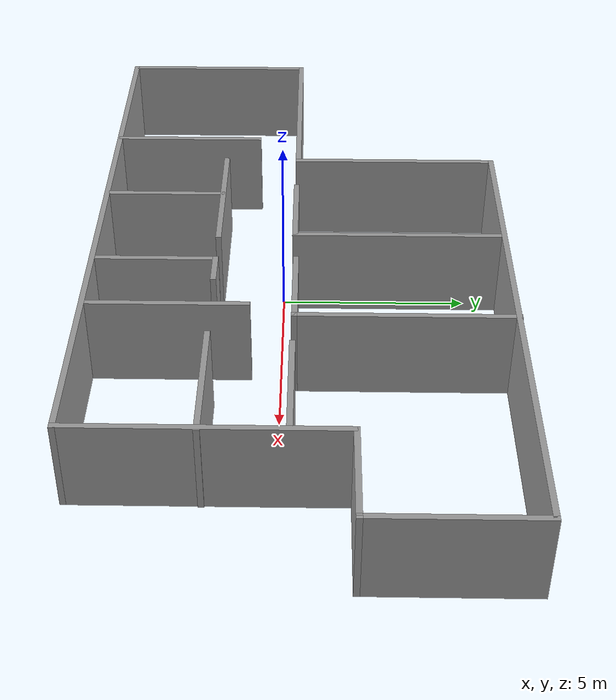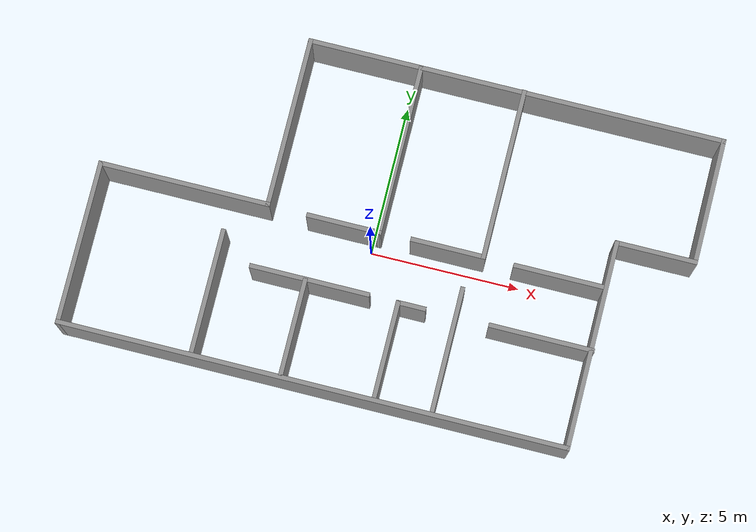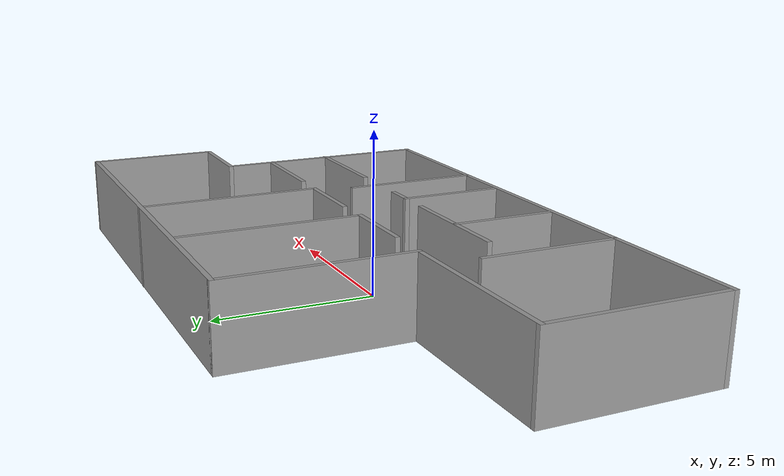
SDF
<?xml version='1.0'?>
<sdf version='1.6'>
  <model name='condo_floor'>
    <pose frame=''>0.600098 0.477909 0 0 -0 0</pose>
    <link name='Wall_40'>
      <collision name='Wall_40_Collision'>
        <geometry>
          <box>
            <size>17 0.15 2.5</size>
          </box>
        </geometry>
        <pose frame=''>0 0 1.25 0 -0 0</pose>
      </collision>
      <visual name='Wall_40_Visual'>
        <pose frame=''>0 0 1.25 0 -0 0</pose>
        <geometry>
          <box>
            <size>17 0.15 2.5</size>
          </box>
        </geometry>
        <material>
          <script>
            <uri>file://media/materials/scripts/gazebo.material</uri>
            <name>Gazebo/Grey</name>
          </script>
          <ambient>1 1 1 1</ambient>
        </material>
        <meta>
          <layer>0</layer>
        </meta>
      </visual>
      <pose frame=''>-1.3 -5.48204 0 0 -0 3.14159</pose>
    </link>
    <link name='Wall_41'>
      <collision name='Wall_41_Collision'>
        <geometry>
          <box>
            <size>5.5 0.15 2.5</size>
          </box>
        </geometry>
        <pose frame=''>0 0 1.25 0 -0 0</pose>
      </collision>
      <visual name='Wall_41_Visual'>
        <pose frame=''>0 0 1.25 0 -0 0</pose>
        <geometry>
          <box>
            <size>5.5 0.15 2.5</size>
          </box>
        </geometry>
        <material>
          <script>
            <uri>file://media/materials/scripts/gazebo.material</uri>
            <name>Gazebo/Grey</name>
          </script>
          <ambient>1 1 1 1</ambient>
        </material>
        <meta>
          <layer>0</layer>
        </meta>
      </visual>
      <pose frame=''>-9.725 -2.80704 0 0 -0 1.5708</pose>
    </link>
    <link name='Wall_42'>
      <collision name='Wall_42_Collision'>
        <geometry>
          <box>
            <size>5.75 0.15 2.5</size>
          </box>
        </geometry>
        <pose frame=''>0 0 1.25 0 -0 0</pose>
      </collision>
      <visual name='Wall_42_Visual'>
        <pose frame=''>0 0 1.25 0 -0 0</pose>
        <geometry>
          <box>
            <size>5.75 0.15 2.5</size>
          </box>
        </geometry>
        <material>
          <script>
            <uri>file://media/materials/scripts/gazebo.material</uri>
            <name>Gazebo/Grey</name>
          </script>
          <ambient>1 1 1 1</ambient>
        </material>
        <meta>
          <layer>0</layer>
        </meta>
      </visual>
      <pose frame=''>-6.925 -0.132042 0 0 -0 0</pose>
    </link>
    <link name='Wall_43'>
      <collision name='Wall_43_Collision'>
        <geometry>
          <box>
            <size>5.75 0.15 2.5</size>
          </box>
        </geometry>
        <pose frame=''>0 0 1.25 0 -0 0</pose>
      </collision>
      <visual name='Wall_43_Visual'>
        <pose frame=''>0 0 1.25 0 -0 0</pose>
        <geometry>
          <box>
            <size>5.75 0.15 2.5</size>
          </box>
        </geometry>
        <material>
          <script>
            <uri>file://media/materials/scripts/gazebo.material</uri>
            <name>Gazebo/Grey</name>
          </script>
          <ambient>1 1 1 1</ambient>
        </material>
        <meta>
          <layer>0</layer>
        </meta>
      </visual>
      <pose frame=''>-4.125 2.66796 0 0 -0 1.5708</pose>
    </link>
    <link name='Wall_44'>
      <collision name='Wall_44_Collision'>
        <geometry>
          <box>
            <size>14 0.15 2.5</size>
          </box>
        </geometry>
        <pose frame=''>0 0 1.25 0 -0 0</pose>
      </collision>
      <visual name='Wall_44_Visual'>
        <pose frame=''>0 0 1.25 0 -0 0</pose>
        <geometry>
          <box>
            <size>14 0.15 2.5</size>
          </box>
        </geometry>
        <material>
          <script>
            <uri>file://media/materials/scripts/gazebo.material</uri>
            <name>Gazebo/Grey</name>
          </script>
          <ambient>1 1 1 1</ambient>
        </material>
        <meta>
          <layer>0</layer>
        </meta>
      </visual>
      <pose frame=''>2.8 5.46796 0 0 -0 0</pose>
    </link>
    <link name='Wall_45'>
      <collision name='Wall_45_Collision'>
        <geometry>
          <box>
            <size>4.25 0.15 2.5</size>
          </box>
        </geometry>
        <pose frame=''>0 0 1.25 0 -0 0</pose>
      </collision>
      <visual name='Wall_45_Visual'>
        <pose frame=''>0 0 1.25 0 -0 0</pose>
        <geometry>
          <box>
            <size>4.25 0.15 2.5</size>
          </box>
        </geometry>
        <material>
          <script>
            <uri>file://media/materials/scripts/gazebo.material</uri>
            <name>Gazebo/Grey</name>
          </script>
          <ambient>1 1 1 1</ambient>
        </material>
        <meta>
          <layer>0</layer>
        </meta>
      </visual>
      <pose frame=''>9.725 3.41796 0 0 -0 -1.5708</pose>
    </link>
    <link name='Wall_46'>
      <collision name='Wall_46_Collision'>
        <geometry>
          <box>
            <size>2.75 0.15 2.5</size>
          </box>
        </geometry>
        <pose frame=''>0 0 1.25 0 -0 0</pose>
      </collision>
      <visual name='Wall_46_Visual'>
        <pose frame=''>0 0 1.25 0 -0 0</pose>
        <geometry>
          <box>
            <size>2.75 0.15 2.5</size>
          </box>
        </geometry>
        <material>
          <script>
            <uri>file://media/materials/scripts/gazebo.material</uri>
            <name>Gazebo/Grey</name>
          </script>
          <ambient>1 1 1 1</ambient>
        </material>
        <meta>
          <layer>0</layer>
        </meta>
      </visual>
      <pose frame=''>8.425 1.36796 0 0 -0 3.14159</pose>
    </link>
    <link name='Wall_47'>
      <collision name='Wall_47_Collision'>
        <geometry>
          <box>
            <size>7 0.15 2.5</size>
          </box>
        </geometry>
        <pose frame=''>0 0 1.25 0 -0 0</pose>
      </collision>
      <visual name='Wall_47_Visual'>
        <pose frame=''>0 0 1.25 0 -0 0</pose>
        <geometry>
          <box>
            <size>7 0.15 2.5</size>
          </box>
        </geometry>
        <material>
          <script>
            <uri>file://media/materials/scripts/gazebo.material</uri>
            <name>Gazebo/Grey</name>
          </script>
          <ambient>1 1 1 1</ambient>
        </material>
        <meta>
          <layer>0</layer>
        </meta>
      </visual>
      <pose frame=''>7.125 -2.05704 0 0 -0 -1.5708</pose>
    </link>
    <link name='Wall_49'>
      <collision name='Wall_49_Collision'>
        <geometry>
          <box>
            <size>2.5 0.15 2.5</size>
          </box>
        </geometry>
        <pose frame=''>0 0 1.25 0 -0 0</pose>
      </collision>
      <visual name='Wall_49_Visual'>
        <pose frame=''>0 0 1.25 0 -0 0</pose>
        <geometry>
          <box>
            <size>2.5 0.15 2.5</size>
          </box>
        </geometry>
        <material>
          <script>
            <uri>file://media/materials/scripts/gazebo.material</uri>
            <name>Gazebo/Grey</name>
          </script>
          <ambient>1 1 1 1</ambient>
        </material>
        <meta>
          <layer>0</layer>
        </meta>
      </visual>
      <pose frame=''>-1.57524 -0.15879 0 0 -0 0</pose>
    </link>
    <link name='Wall_50'>
      <collision name='Wall_50_Collision'>
        <geometry>
          <box>
            <size>5.75 0.15 2.5</size>
          </box>
        </geometry>
        <pose frame=''>0 0 1.25 0 -0 0</pose>
      </collision>
      <visual name='Wall_50_Visual'>
        <pose frame=''>0 0 1.25 0 -0 0</pose>
        <geometry>
          <box>
            <size>5.75 0.15 2.5</size>
          </box>
        </geometry>
        <material>
          <script>
            <uri>file://media/materials/scripts/gazebo.material</uri>
            <name>Gazebo/Grey</name>
          </script>
          <ambient>1 1 1 1</ambient>
        </material>
        <meta>
          <layer>0</layer>
        </meta>
      </visual>
      <pose frame=''>-0.400236 2.64121 0 0 -0 1.5708</pose>
    </link>
    <link name='Wall_52'>
      <collision name='Wall_52_Collision'>
        <geometry>
          <box>
            <size>5.75 0.15 2.5</size>
          </box>
        </geometry>
        <pose frame=''>0 0 1.25 0 -0 0</pose>
      </collision>
      <visual name='Wall_52_Visual'>
        <pose frame=''>0 0 1.25 0 -0 0</pose>
        <geometry>
          <box>
            <size>5.75 0.15 2.5</size>
          </box>
        </geometry>
        <material>
          <script>
            <uri>file://media/materials/scripts/gazebo.material</uri>
            <name>Gazebo/Grey</name>
          </script>
          <ambient>1 1 1 1</ambient>
        </material>
        <meta>
          <layer>0</layer>
        </meta>
      </visual>
      <pose frame=''>3.05695 2.68204 0 0 -0 -1.5708</pose>
    </link>
    <link name='Wall_53'>
      <collision name='Wall_53_Collision'>
        <geometry>
          <box>
            <size>2.5 0.15 2.5</size>
          </box>
        </geometry>
        <pose frame=''>0 0 1.25 0 -0 0</pose>
      </collision>
      <visual name='Wall_53_Visual'>
        <pose frame=''>0 0 1.25 0 -0 0</pose>
        <geometry>
          <box>
            <size>2.5 0.15 2.5</size>
          </box>
        </geometry>
        <material>
          <script>
            <uri>file://media/materials/scripts/gazebo.material</uri>
            <name>Gazebo/Grey</name>
          </script>
          <ambient>1 1 1 1</ambient>
        </material>
        <meta>
          <layer>0</layer>
        </meta>
      </visual>
      <pose frame=''>1.88195 -0.117958 0 0 -0 3.14159</pose>
    </link>
    <link name='Wall_55'>
      <collision name='Wall_55_Collision'>
        <geometry>
          <box>
            <size>3 0.15 2.5</size>
          </box>
        </geometry>
        <pose frame=''>0 0 1.25 0 -0 0</pose>
      </collision>
      <visual name='Wall_55_Visual'>
        <pose frame=''>0 0 1.25 0 -0 0</pose>
        <geometry>
          <box>
            <size>3 0.15 2.5</size>
          </box>
        </geometry>
        <material>
          <script>
            <uri>file://media/materials/scripts/gazebo.material</uri>
            <name>Gazebo/Grey</name>
          </script>
          <ambient>1 1 1 1</ambient>
        </material>
        <meta>
          <layer>0</layer>
        </meta>
      </visual>
      <pose frame=''>5.55567 -0.143667 0 0 -0 0</pose>
    </link>
    <link name='Wall_57'>
      <collision name='Wall_57_Collision'>
        <geometry>
          <box>
            <size>4.25 0.15 2.5</size>
          </box>
        </geometry>
        <pose frame=''>0 0 1.25 0 -0 0</pose>
      </collision>
      <visual name='Wall_57_Visual'>
        <pose frame=''>0 0 1.25 0 -0 0</pose>
        <geometry>
          <box>
            <size>4.25 0.15 2.5</size>
          </box>
        </geometry>
        <material>
          <script>
            <uri>file://media/materials/scripts/gazebo.material</uri>
            <name>Gazebo/Grey</name>
          </script>
          <ambient>1 1 1 1</ambient>
        </material>
        <meta>
          <layer>0</layer>
        </meta>
      </visual>
      <pose frame=''>-5.306 -3.38837 0 0 -0 -1.5708</pose>
    </link>
    <link name='Wall_59'>
      <collision name='Wall_59_Collision'>
        <geometry>
          <box>
            <size>4 0.15 2.5</size>
          </box>
        </geometry>
        <pose frame=''>0 0 1.25 0 -0 0</pose>
      </collision>
      <visual name='Wall_59_Visual'>
        <pose frame=''>0 0 1.25 0 -0 0</pose>
        <geometry>
          <box>
            <size>4 0.15 2.5</size>
          </box>
        </geometry>
        <material>
          <script>
            <uri>file://media/materials/scripts/gazebo.material</uri>
            <name>Gazebo/Grey</name>
          </script>
          <ambient>1 1 1 1</ambient>
        </material>
        <meta>
          <layer>0</layer>
        </meta>
      </visual>
      <pose frame=''>-2.20142 -2.2155 0 0 -0 0</pose>
    </link>
    <link name='Wall_61'>
      <collision name='Wall_61_Collision'>
        <geometry>
          <box>
            <size>3.25 0.15 2.5</size>
          </box>
        </geometry>
        <pose frame=''>0 0 1.25 0 -0 0</pose>
      </collision>
      <visual name='Wall_61_Visual'>
        <pose frame=''>0 0 1.25 0 -0 0</pose>
        <geometry>
          <box>
            <size>3.25 0.15 2.5</size>
          </box>
        </geometry>
        <material>
          <script>
            <uri>file://media/materials/scripts/gazebo.material</uri>
            <name>Gazebo/Grey</name>
          </script>
          <ambient>1 1 1 1</ambient>
        </material>
        <meta>
          <layer>0</layer>
        </meta>
      </visual>
      <pose frame=''>-2.34192 -3.81087 0 0 -0 -1.5708</pose>
    </link>
    <link name='Wall_63'>
      <collision name='Wall_63_Collision'>
        <geometry>
          <box>
            <size>1 0.15 2.5</size>
          </box>
        </geometry>
        <pose frame=''>0 0 1.25 0 -0 0</pose>
      </collision>
      <visual name='Wall_63_Visual'>
        <pose frame=''>0 0 1.25 0 -0 0</pose>
        <geometry>
          <box>
            <size>1 0.15 2.5</size>
          </box>
        </geometry>
        <material>
          <script>
            <uri>file://media/materials/scripts/gazebo.material</uri>
            <name>Gazebo/Grey</name>
          </script>
          <ambient>1 1 1 1</ambient>
        </material>
        <meta>
          <layer>0</layer>
        </meta>
      </visual>
      <pose frame=''>1.16815 -2.23062 0 0 -0 0</pose>
    </link>
    <link name='Wall_65'>
      <collision name='Wall_65_Collision'>
        <geometry>
          <box>
            <size>3.25 0.15 2.5</size>
          </box>
        </geometry>
        <pose frame=''>0 0 1.25 0 -0 0</pose>
      </collision>
      <visual name='Wall_65_Visual'>
        <pose frame=''>0 0 1.25 0 -0 0</pose>
        <geometry>
          <box>
            <size>3.25 0.15 2.5</size>
          </box>
        </geometry>
        <material>
          <script>
            <uri>file://media/materials/scripts/gazebo.material</uri>
            <name>Gazebo/Grey</name>
          </script>
          <ambient>1 1 1 1</ambient>
        </material>
        <meta>
          <layer>0</layer>
        </meta>
      </visual>
      <pose frame=''>0.743148 -3.78062 0 0 -0 -1.5708</pose>
    </link>
    <link name='Wall_67'>
      <collision name='Wall_67_Collision'>
        <geometry>
          <box>
            <size>4.25 0.15 2.5</size>
          </box>
        </geometry>
        <pose frame=''>0 0 1.25 0 -0 0</pose>
      </collision>
      <visual name='Wall_67_Visual'>
        <pose frame=''>0 0 1.25 0 -0 0</pose>
        <geometry>
          <box>
            <size>4.25 0.15 2.5</size>
          </box>
        </geometry>
        <material>
          <script>
            <uri>file://media/materials/scripts/gazebo.material</uri>
            <name>Gazebo/Grey</name>
          </script>
          <ambient>1 1 1 1</ambient>
        </material>
        <meta>
          <layer>0</layer>
        </meta>
      </visual>
      <pose frame=''>2.64863 -3.35813 0 0 -0 -1.5708</pose>
    </link>
    <link name='Wall_69'>
      <collision name='Wall_69_Collision'>
        <geometry>
          <box>
            <size>3.5 0.15 2.5</size>
          </box>
        </geometry>
        <pose frame=''>0 0 1.25 0 -0 0</pose>
      </collision>
      <visual name='Wall_69_Visual'>
        <pose frame=''>0 0 1.25 0 -0 0</pose>
        <geometry>
          <box>
            <size>3.5 0.15 2.5</size>
          </box>
        </geometry>
        <material>
          <script>
            <uri>file://media/materials/scripts/gazebo.material</uri>
            <name>Gazebo/Grey</name>
          </script>
          <ambient>1 1 1 1</ambient>
        </material>
        <meta>
          <layer>0</layer>
        </meta>
      </visual>
      <pose frame=''>5.48809 -2.23062 0 0 -0 0</pose>
    </link>
    <static>1</static>
  </model>
</sdf>
